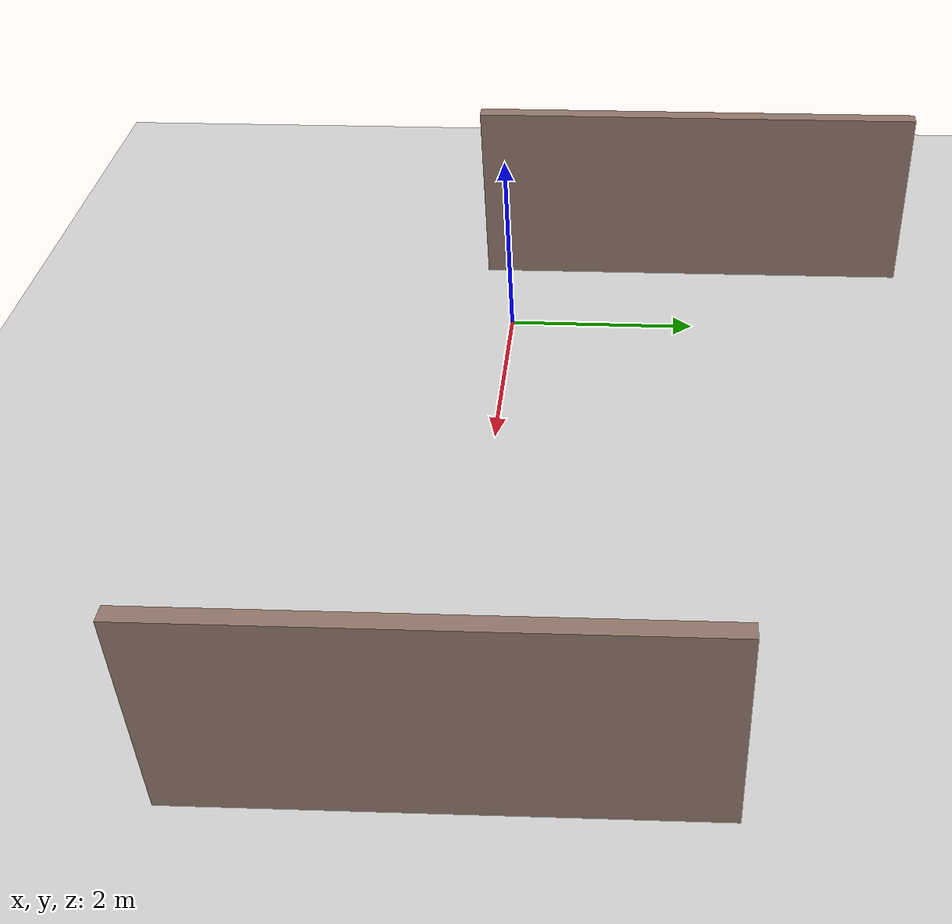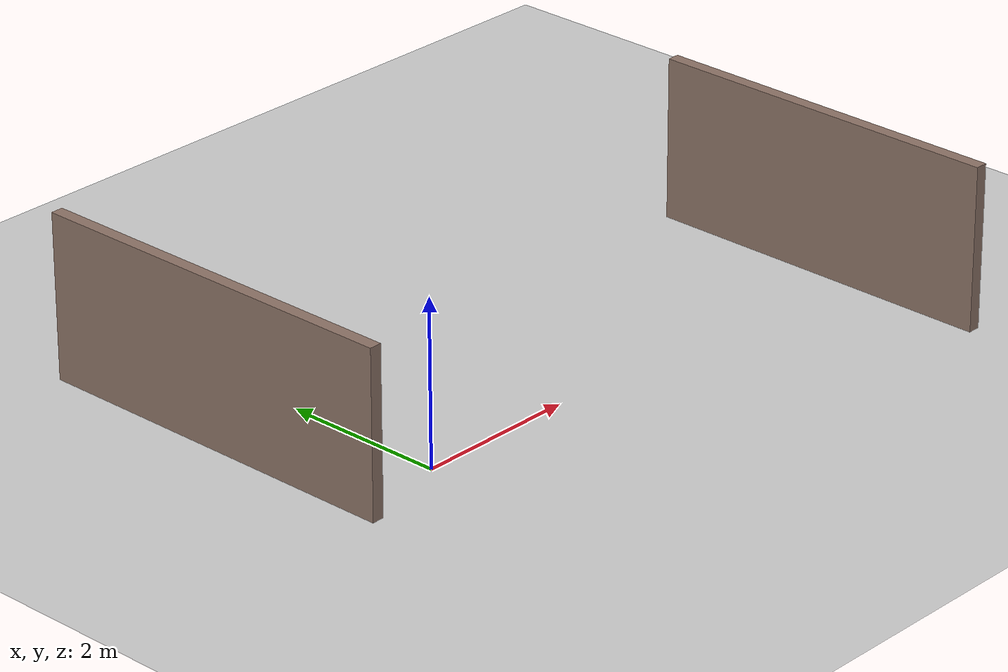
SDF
<sdf version="1.8">
 <world name="testroom_multiroom">
  <model name="ground_plane">
   <static>true</static>
   <link name="link">
    <collision name="collision">
     <geometry><plane><normal>0 0 1</normal><size>200 200</size></plane></geometry>
    </collision>
    <visual name="visual">
     <geometry><plane><normal>0 0 1</normal><size>200 200</size></plane></geometry>
     <material><ambient>0.8 0.8 0.8 1</ambient><diffuse>0.8 0.8 0.8 1</diffuse></material>
    </visual>
   </link>
  </model>
  <model name="partitions">
   <static>true</static>
   <link name="partition_walls">
    <collision name="c_part1">
     <pose>-1.170 2.005 1.000 0 0 0</pose>
     <geometry><box><size>0.150 4.750 2.000</size></box></geometry>
    </collision>
    <visual name="v_part1">
     <pose>-1.170 2.005 1.000 0 0 0</pose>
     <geometry><box><size>0.150 4.750 2.000</size></box></geometry>
     <material><ambient>0.45 0.35 0.3 1</ambient><diffuse>0.55 0.45 0.4 1</diffuse></material>
    </visual>
    <collision name="c_part2">
     <pose>6.430 0.055 1.000 0 0 0</pose>
     <geometry><box><size>0.150 4.450 2.000</size></box></geometry>
    </collision>
    <visual name="v_part2">
     <pose>6.430 0.055 1.000 0 0 0</pose>
     <geometry><box><size>0.150 4.450 2.000</size></box></geometry>
     <material><ambient>0.45 0.35 0.3 1</ambient><diffuse>0.55 0.45 0.4 1</diffuse></material>
    </visual>
   </link>
  </model>
 </world>
</sdf>
